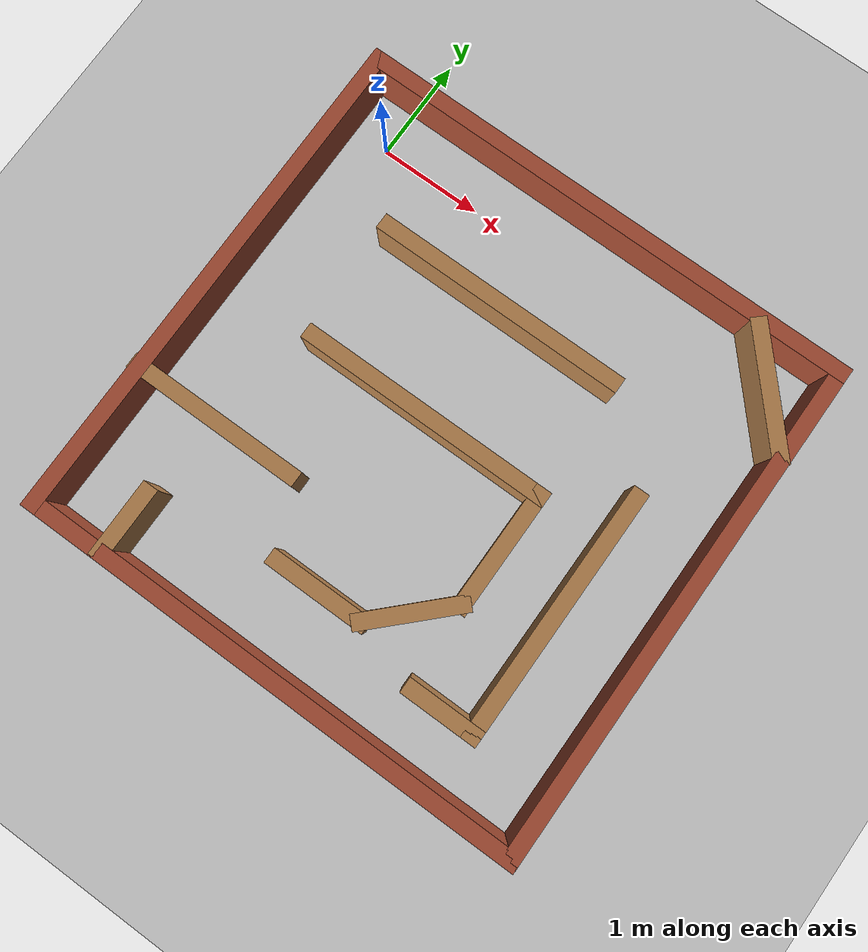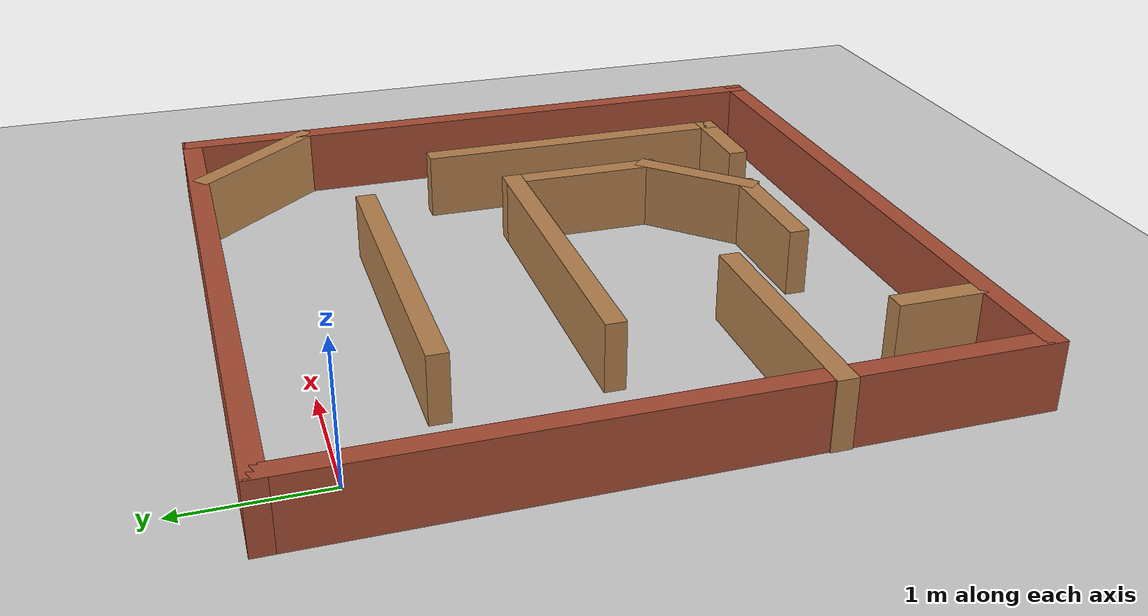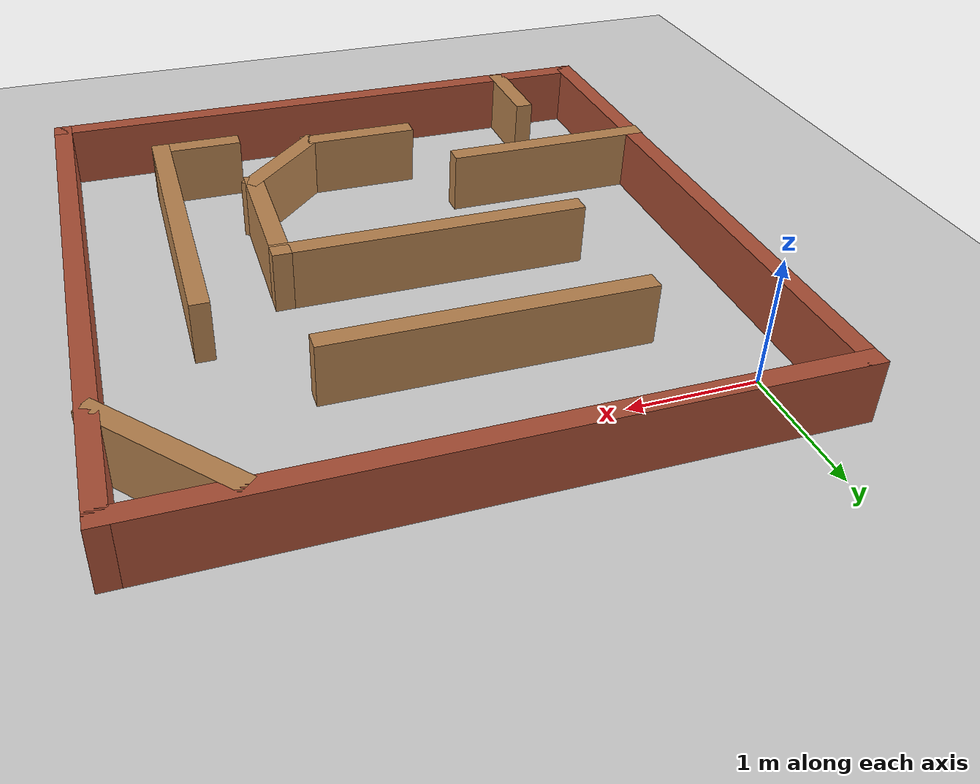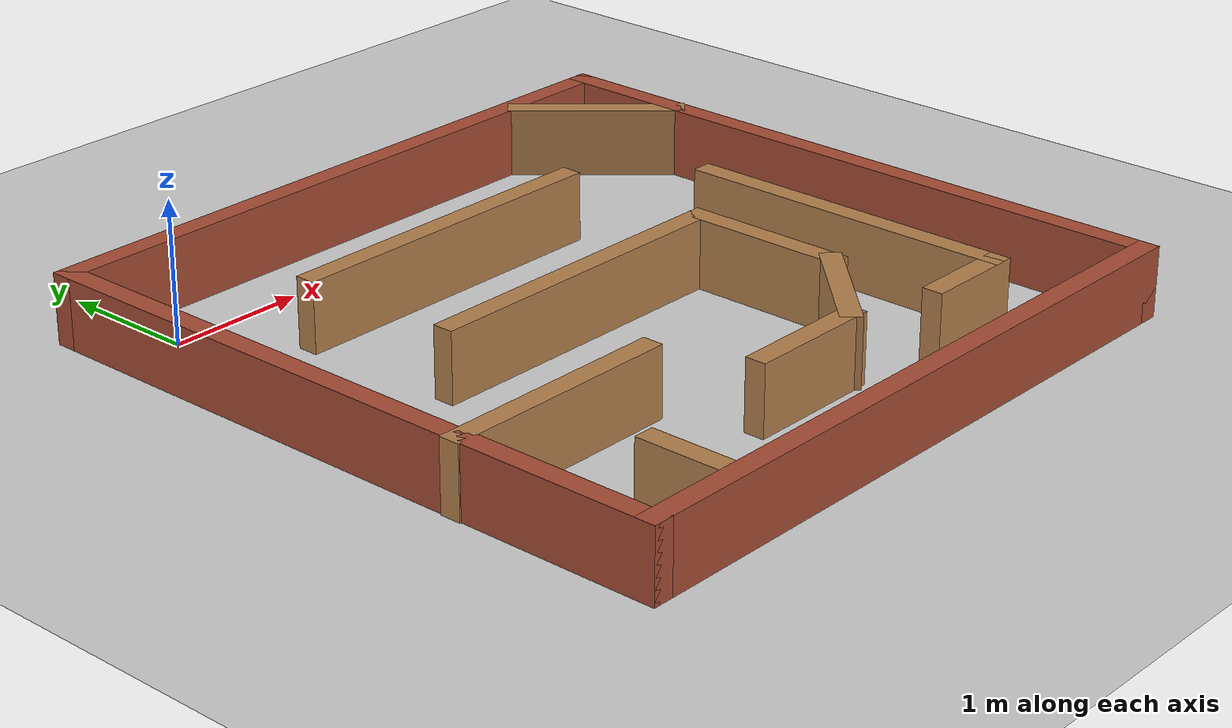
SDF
<?xml version="1.0" ?>
<sdf version="1.5">
  <world name="default">
    <!-- A global light source -->
    <include>
      <uri>model://sun</uri>
    </include>
    <!-- A ground plane -->
    <include>
      <uri>model://ground_plane</uri>
    </include>
    <!-- A Building -->
    <include>
      <uri>model://simple_building</uri>
      <pose>2.0 0.7 0 0 0 0</pose>
    </include>
  </world>
</sdf>

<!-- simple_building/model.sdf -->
<sdf version='1.7'>
  <model name='simple_building'>
    <pose>-0.49455 -5.1275 0 0 -0 0</pose>
    <link name='Wall_0'>
      <collision name='Wall_0_Collision'>
        <geometry>
          <box>
            <size>5 0.15 0.5</size>
          </box>
        </geometry>
        <pose>0 0 0.25 0 -0 0</pose>
      </collision>
      <visual name='Wall_0_Visual'>
        <pose>0 0 0.25 0 -0 0</pose>
        <geometry>
          <box>
            <size>5 0.15 0.5</size>
          </box>
        </geometry>
        <material>
          <script>
            <uri>file://media/materials/scripts/gazebo.material</uri>
            <name>Gazebo/Bricks</name>
          </script>
          <ambient>1 1 1 1</ambient>
        </material>
        <meta>
          <layer>0</layer>
        </meta>
      </visual>
      <pose>-2.42545 -2.6275 0 0 -0 -1.5708</pose>
    </link>
    <link name='Wall_1'>
      <collision name='Wall_1_Collision'>
        <geometry>
          <box>
            <size>5 0.15 0.5</size>
          </box>
        </geometry>
        <pose>0 0 0.25 0 -0 0</pose>
      </collision>
      <visual name='Wall_1_Visual'>
        <pose>0 0 0.25 0 -0 0</pose>
        <geometry>
          <box>
            <size>5 0.15 0.5</size>
          </box>
        </geometry>
        <material>
          <script>
            <uri>file://media/materials/scripts/gazebo.material</uri>
            <name>Gazebo/Bricks</name>
          </script>
          <ambient>1 1 1 1</ambient>
        </material>
        <meta>
          <layer>0</layer>
        </meta>
      </visual>
      <pose>-0.00045 -5.0525 0 0 -0 0</pose>
    </link>
    <link name='Wall_10'>
      <collision name='Wall_10_Collision'>
        <geometry>
          <box>
            <size>1 0.15 0.5</size>
          </box>
        </geometry>
        <pose>0 0 0.25 0 -0 0</pose>
      </collision>
      <visual name='Wall_10_Visual'>
        <pose>0 0 0.25 0 -0 0</pose>
        <geometry>
          <box>
            <size>1 0.15 0.5</size>
          </box>
        </geometry>
        <material>
          <script>
            <uri>file://media/materials/scripts/gazebo.material</uri>
            <name>Gazebo/Wood</name>
          </script>
          <ambient>1 1 1 1</ambient>
        </material>
        <meta>
          <layer>0</layer>
        </meta>
      </visual>
      <pose>0.65507 -3.95198 0 0 -0 0.785398</pose>
    </link>
    <link name='Wall_11'>
      <collision name='Wall_11_Collision'>
        <geometry>
          <box>
            <size>1.25 0.15 0.5</size>
          </box>
        </geometry>
        <pose>0 0 0.25 0 -0 0</pose>
      </collision>
      <visual name='Wall_11_Visual'>
        <pose>0 0 0.25 0 -0 0</pose>
        <geometry>
          <box>
            <size>1.25 0.15 0.5</size>
          </box>
        </geometry>
        <material>
          <script>
            <uri>file://media/materials/scripts/gazebo.material</uri>
            <name>Gazebo/Wood</name>
          </script>
          <ambient>1 1 1 1</ambient>
        </material>
        <meta>
          <layer>0</layer>
        </meta>
      </visual>
      <pose>0.955591 -3.10146 0 0 -0 1.5708</pose>
    </link>
    <link name='Wall_12'>
      <collision name='Wall_12_Collision'>
        <geometry>
          <box>
            <size>2.5 0.15 0.5</size>
          </box>
        </geometry>
        <pose>0 0 0.25 0 -0 0</pose>
      </collision>
      <visual name='Wall_12_Visual'>
        <pose>0 0 0.25 0 -0 0</pose>
        <geometry>
          <box>
            <size>2.5 0.15 0.5</size>
          </box>
        </geometry>
        <material>
          <script>
            <uri>file://media/materials/scripts/gazebo.material</uri>
            <name>Gazebo/Wood</name>
          </script>
          <ambient>1 1 1 1</ambient>
        </material>
        <meta>
          <layer>0</layer>
        </meta>
      </visual>
      <pose>-0.219409 -2.55146 0 0 -0 3.14159</pose>
    </link>
    <link name='Wall_14'>
      <collision name='Wall_14_Collision'>
        <geometry>
          <box>
            <size>2.5 0.15 0.5</size>
          </box>
        </geometry>
        <pose>0 0 0.25 0 -0 0</pose>
      </collision>
      <visual name='Wall_14_Visual'>
        <pose>0 0 0.25 0 -0 0</pose>
        <geometry>
          <box>
            <size>2.5 0.15 0.5</size>
          </box>
        </geometry>
        <material>
          <script>
            <uri>file://media/materials/scripts/gazebo.material</uri>
            <name>Gazebo/Wood</name>
          </script>
          <ambient>1 1 1 1</ambient>
        </material>
        <meta>
          <layer>0</layer>
        </meta>
      </visual>
      <pose>-0.27045 -1.3925 0 0 -0 0</pose>
    </link>
    <link name='Wall_16'>
      <collision name='Wall_16_Collision'>
        <geometry>
          <box>
            <size>2.5 0.15 0.5</size>
          </box>
        </geometry>
        <pose>0 0 0.25 0 -0 0</pose>
      </collision>
      <visual name='Wall_16_Visual'>
        <pose>0 0 0.25 0 -0 0</pose>
        <geometry>
          <box>
            <size>2.5 0.15 0.5</size>
          </box>
        </geometry>
        <material>
          <script>
            <uri>file://media/materials/scripts/gazebo.material</uri>
            <name>Gazebo/Wood</name>
          </script>
          <ambient>1 1 1 1</ambient>
        </material>
        <meta>
          <layer>0</layer>
        </meta>
      </visual>
      <pose>1.62455 -3.2675 0 0 -0 -1.5708</pose>
    </link>
    <link name='Wall_17'>
      <collision name='Wall_17_Collision'>
        <geometry>
          <box>
            <size>0.75 0.15 0.5</size>
          </box>
        </geometry>
        <pose>0 0 0.25 0 -0 0</pose>
      </collision>
      <visual name='Wall_17_Visual'>
        <pose>0 0 0.25 0 -0 0</pose>
        <geometry>
          <box>
            <size>0.75 0.15 0.5</size>
          </box>
        </geometry>
        <material>
          <script>
            <uri>file://media/materials/scripts/gazebo.material</uri>
            <name>Gazebo/Wood</name>
          </script>
          <ambient>1 1 1 1</ambient>
        </material>
        <meta>
          <layer>0</layer>
        </meta>
      </visual>
      <pose>1.32455 -4.4425 0 0 -0 3.14159</pose>
    </link>
    <link name='Wall_19'>
      <collision name='Wall_19_Collision'>
        <geometry>
          <box>
            <size>1.29022 0.15 0.5</size>
          </box>
        </geometry>
        <pose>0 0 0.25 0 -0 0</pose>
      </collision>
      <visual name='Wall_19_Visual'>
        <pose>0 0 0.25 0 -0 0</pose>
        <geometry>
          <box>
            <size>1.29022 0.15 0.5</size>
          </box>
        </geometry>
        <material>
          <script>
            <uri>file://media/materials/scripts/gazebo.material</uri>
            <name>Gazebo/Wood</name>
          </script>
          <ambient>1 1 1 1</ambient>
        </material>
        <meta>
          <layer>0</layer>
        </meta>
      </visual>
      <pose>2.02455 -0.6875 0 0 -0 -0.841241</pose>
    </link>
    <link name='Wall_2'>
      <collision name='Wall_2_Collision'>
        <geometry>
          <box>
            <size>5 0.15 0.5</size>
          </box>
        </geometry>
        <pose>0 0 0.25 0 -0 0</pose>
      </collision>
      <visual name='Wall_2_Visual'>
        <pose>0 0 0.25 0 -0 0</pose>
        <geometry>
          <box>
            <size>5 0.15 0.5</size>
          </box>
        </geometry>
        <material>
          <script>
            <uri>file://media/materials/scripts/gazebo.material</uri>
            <name>Gazebo/Bricks</name>
          </script>
          <ambient>1 1 1 1</ambient>
        </material>
        <meta>
          <layer>0</layer>
        </meta>
      </visual>
      <pose>2.42455 -2.6275 0 0 -0 1.5708</pose>
    </link>
    <link name='Wall_3'>
      <collision name='Wall_3_Collision'>
        <geometry>
          <box>
            <size>5 0.15 0.5</size>
          </box>
        </geometry>
        <pose>0 0 0.25 0 -0 0</pose>
      </collision>
      <visual name='Wall_3_Visual'>
        <pose>0 0 0.25 0 -0 0</pose>
        <geometry>
          <box>
            <size>5 0.15 0.5</size>
          </box>
        </geometry>
        <material>
          <script>
            <uri>file://media/materials/scripts/gazebo.material</uri>
            <name>Gazebo/Bricks</name>
          </script>
          <ambient>1 1 1 1</ambient>
        </material>
        <meta>
          <layer>0</layer>
        </meta>
      </visual>
      <pose>-0.00045 -0.2025 0 0 -0 3.14159</pose>
    </link>
    <link name='Wall_5'>
      <collision name='Wall_5_Collision'>
        <geometry>
          <box>
            <size>0.75 0.15 0.5</size>
          </box>
        </geometry>
        <pose>0 0 0.25 0 -0 0</pose>
      </collision>
      <visual name='Wall_5_Visual'>
        <pose>0 0 0.25 0 -0 0</pose>
        <geometry>
          <box>
            <size>0.75 0.15 0.5</size>
          </box>
        </geometry>
        <material>
          <script>
            <uri>file://media/materials/scripts/gazebo.material</uri>
            <name>Gazebo/Wood</name>
          </script>
          <ambient>1 1 1 1</ambient>
        </material>
        <meta>
          <layer>0</layer>
        </meta>
      </visual>
      <pose>-1.71545 -4.7425 0 0 -0 1.5708</pose>
    </link>
    <link name='Wall_7'>
      <collision name='Wall_7_Collision'>
        <geometry>
          <box>
            <size>1.75 0.15 0.5</size>
          </box>
        </geometry>
        <pose>0 0 0.25 0 -0 0</pose>
      </collision>
      <visual name='Wall_7_Visual'>
        <pose>0 0 0.25 0 -0 0</pose>
        <geometry>
          <box>
            <size>1.75 0.15 0.5</size>
          </box>
        </geometry>
        <material>
          <script>
            <uri>file://media/materials/scripts/gazebo.material</uri>
            <name>Gazebo/Wood</name>
          </script>
          <ambient>1 1 1 1</ambient>
        </material>
        <meta>
          <layer>0</layer>
        </meta>
      </visual>
      <pose>-1.63545 -3.6225 0 0 -0 0</pose>
    </link>
    <link name='Wall_9'>
      <collision name='Wall_9_Collision'>
        <geometry>
          <box>
            <size>1 0.15 0.5</size>
          </box>
        </geometry>
        <pose>0 0 0.25 0 -0 0</pose>
      </collision>
      <visual name='Wall_9_Visual'>
        <pose>0 0 0.25 0 -0 0</pose>
        <geometry>
          <box>
            <size>1 0.15 0.5</size>
          </box>
        </geometry>
        <material>
          <script>
            <uri>file://media/materials/scripts/gazebo.material</uri>
            <name>Gazebo/Wood</name>
          </script>
          <ambient>1 1 1 1</ambient>
        </material>
        <meta>
          <layer>0</layer>
        </meta>
      </visual>
      <pose>-0.07045 -4.2525 0 0 -0 0</pose>
    </link>
    <static>1</static>
  </model>
</sdf>
